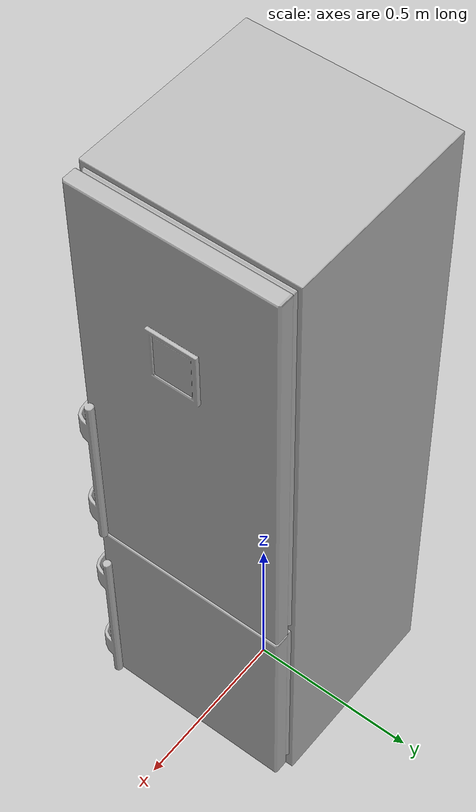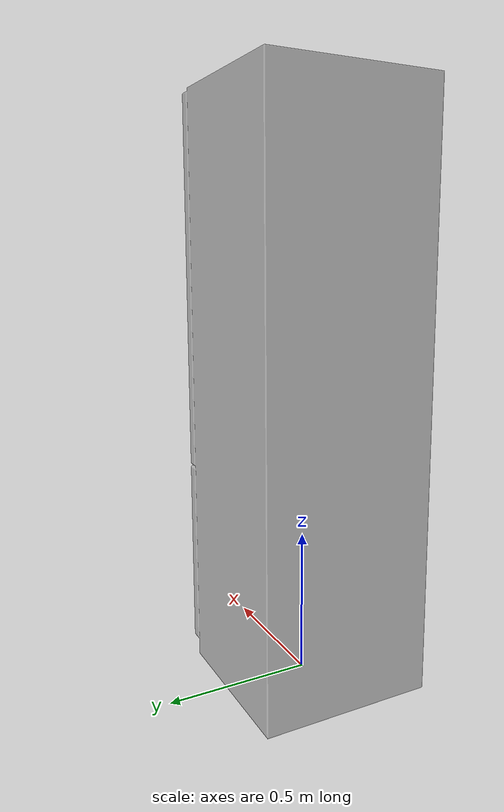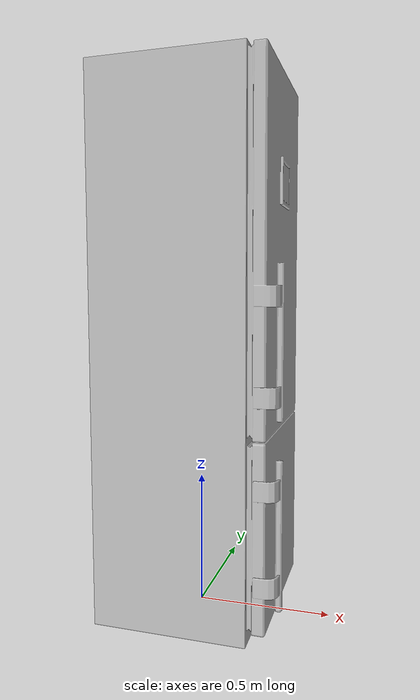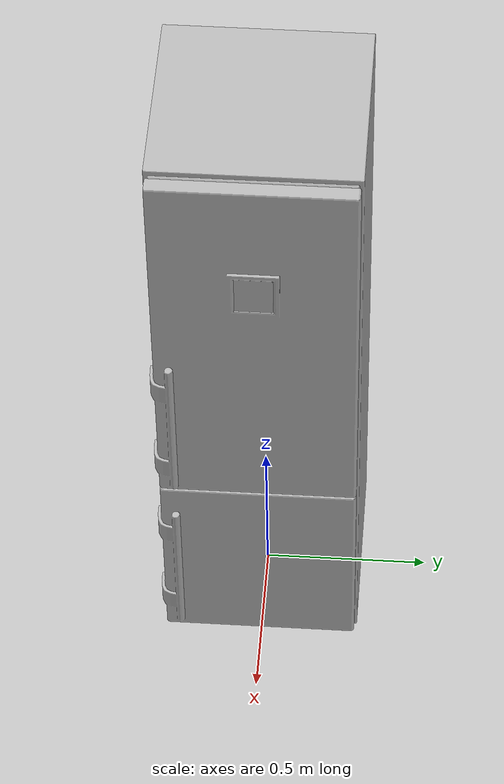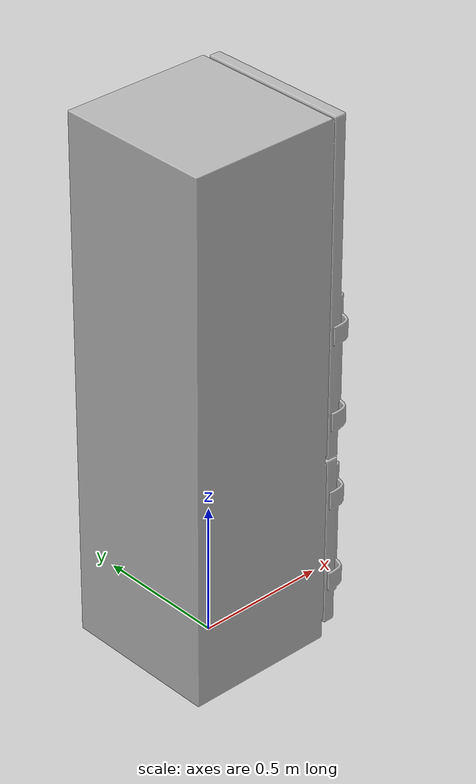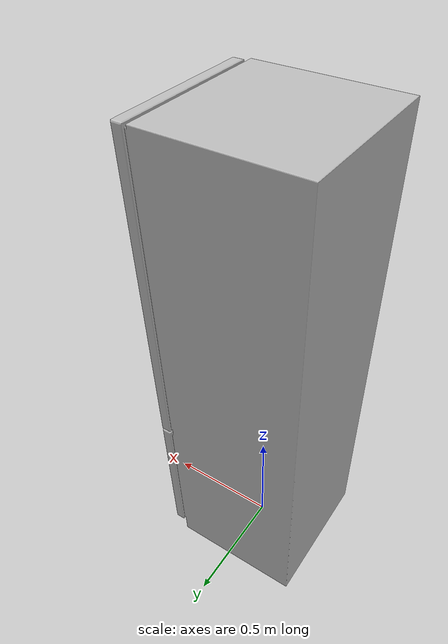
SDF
<?xml version='1.0'?>
<sdf version='1.4'>
  <model name='102'>
    <pose>0 0 0 0 0 0</pose>
    <static>true</static>
    <link name='link'>
      <collision name='collision'>
        <pose>0 0 0 0 0 0</pose>
        <geometry>
          <box>
            <size>0.685405 0.599801 2</size>
          </box>
        </geometry>
      </collision>
      <visual name='visual'>
        <pose>0 0 0 0 0 0</pose>
        <geometry>
          <mesh><uri>model://102/102.dae</uri></mesh>
        </geometry>
      </visual>
    </link>
  </model>
</sdf>
